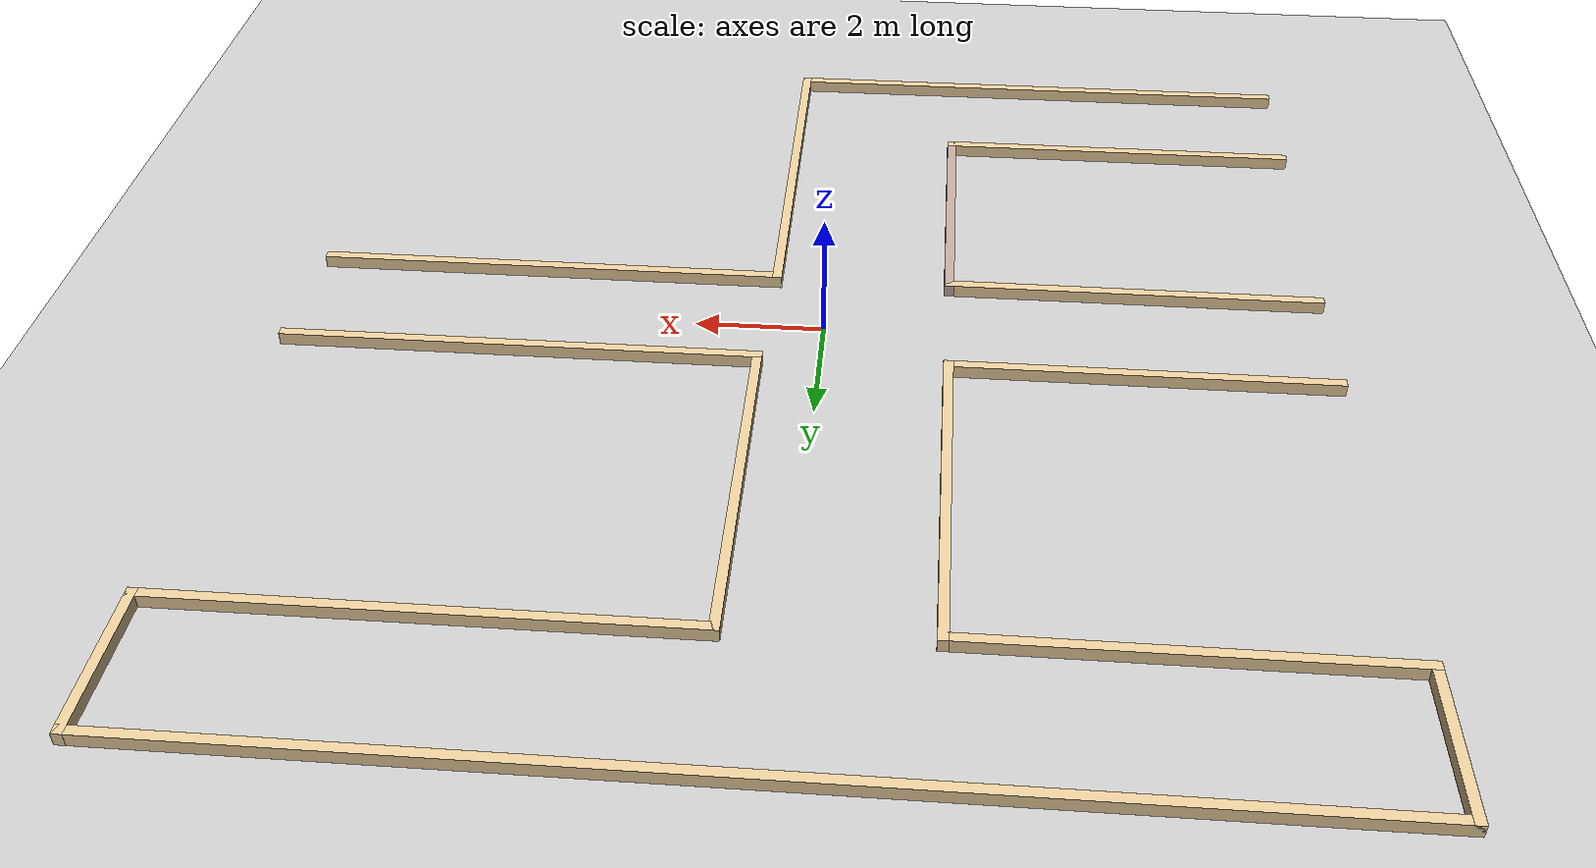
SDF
<sdf version="1.6">
 <world name="default">
  <light name="sun" type="directional">
   <pose>0 0 10 0 -0 0</pose>
   <diffuse>0.8 0.8 0.8 1</diffuse>
   <specular>0.2 0.2 0.2 1</specular>
   <attenuation>
    <range>1000</range>
    <constant>0.9</constant>
    <linear>0.01</linear>
    <quadratic>0.001</quadratic>
   </attenuation>
   <direction>-0.5 0.1 -0.9</direction>
  </light>
  <plugin name="collision_map_creator" filename="libcollision_map_creator.so"/>
  <model name="ground_plane">
   <static>1</static>
   <link name="link">
    <collision name="collision">
     <geometry><plane><normal>0 0 1</normal><size>100 100</size></plane></geometry>
     <surface><friction><ode><mu>100</mu><mu2>50</mu2></ode></friction></surface>
    </collision>
    <visual name="visual">
     <cast_shadows>0</cast_shadows>
     <geometry><plane><normal>0 0 1</normal><size>100 100</size></plane></geometry>
     <material>
      <script><uri>file://media/materials/scripts/gazebo.material</uri><name>Gazebo/Grey</name></script>
     </material>
    </visual>
   </link>
  </model>
  <gravity>0 0 -9.8</gravity>
  <magnetic_field>6e-06 2.3e-05 -4.2e-05</magnetic_field>
  <atmosphere type="adiabatic"/>
  <physics name="default_physics" default="0" type="ode">
   <max_step_size>0.001</max_step_size>
   <real_time_factor>1</real_time_factor>
   <real_time_update_rate>1000</real_time_update_rate>
  </physics>
  <scene><ambient>0.4 0.4 0.4 1</ambient><background>0.7 0.7 0.7 1</background><shadows>1</shadows></scene>
  <spherical_coordinates>
   <surface_model>EARTH_WGS84</surface_model>
   <latitude_deg>0</latitude_deg>
   <longitude_deg>0</longitude_deg>
   <elevation>0</elevation>
   <heading_deg>0</heading_deg>
  </spherical_coordinates>
  <model name="intersections2">
   <pose>0.244 0.6254 0 0 -0 0</pose>
   <link name="Wall_10">
    <collision name="Wall_10_Collision">
     <geometry><box><size>6 0.15 0.2</size></box></geometry>
     <pose>0 0 0.1 0 -0 0</pose>
    </collision>
    <visual name="Wall_10_Visual">
     <pose>0 0 0.1 0 -0 0</pose>
     <geometry><box><size>6 0.15 0.2</size></box></geometry>
     <material>
      <script><uri>file://media/materials/scripts/gazebo.material</uri><name>Gazebo/Grey</name></script>
      <ambient>0.921569 0.807843 0.615686 1</ambient>
     </material>
    </visual>
    <pose>-5.114 -1.7644 0 0 -0 3.14159</pose>
   </link>
   <link name="Wall_13">
    <collision name="Wall_13_Collision">
     <geometry><box><size>8.75 0.15 0.2</size></box></geometry>
     <pose>0 0 0.1 0 -0 0</pose>
    </collision>
    <visual name="Wall_13_Visual">
     <pose>0 0 0.1 0 -0 0</pose>
     <geometry><box><size>8.75 0.15 0.2</size></box></geometry>
     <material>
      <script><uri>file://media/materials/scripts/gazebo.material</uri><name>Gazebo/Grey</name></script>
      <ambient>0.921569 0.807843 0.615686 1</ambient>
     </material>
    </visual>
    <pose>-3.719 -8.2669 0 0 -0 0.002674</pose>
   </link>
   <link name="Wall_14">
    <collision name="Wall_14_Collision">
     <geometry><box><size>6.62009 0.15 0.2</size></box></geometry>
     <pose>0 0 0.1 0 -0 0</pose>
    </collision>
    <visual name="Wall_14_Visual">
     <pose>0 0 0.1 0 -0 0</pose>
     <geometry><box><size>6.62009 0.15 0.2</size></box></geometry>
     <material>
      <script><uri>file://media/materials/scripts/gazebo.material</uri><name>Gazebo/Grey</name></script>
      <ambient>0.921569 0.807843 0.615686 1</ambient>
     </material>
    </visual>
    <pose>0.581 -5.0199 0 0 -0 1.5708</pose>
   </link>
   <link name="Wall_15">
    <collision name="Wall_15_Collision">
     <geometry><box><size>7.5 0.15 0.2</size></box></geometry>
     <pose>0 0 0.1 0 -0 0</pose>
    </collision>
    <visual name="Wall_15_Visual">
     <pose>0 0 0.1 0 -0 0</pose>
     <geometry><box><size>7.5 0.15 0.2</size></box></geometry>
     <material>
      <script><uri>file://media/materials/scripts/gazebo.material</uri><name>Gazebo/Grey</name></script>
      <ambient>0.921569 0.807843 0.615686 1</ambient>
     </material>
    </visual>
    <pose>4.256 -1.7844 0 0 -0 0</pose>
   </link>
   <link name="Wall_17">
    <collision name="Wall_17_Collision">
     <geometry><box><size>6 0.15 0.2</size></box></geometry>
     <pose>0 0 0.1 0 -0 0</pose>
    </collision>
    <visual name="Wall_17_Visual">
     <pose>0 0 0.1 0 -0 0</pose>
     <geometry><box><size>6 0.15 0.2</size></box></geometry>
     <material>
      <script><uri>file://media/materials/scripts/gazebo.material</uri><name>Gazebo/Grey</name></script>
      <ambient>0.921569 0.807843 0.615686 1</ambient>
     </material>
    </visual>
    <pose>-5.125 0.328597 0 0 -0 0</pose>
   </link>
   <link name="Wall_18">
    <collision name="Wall_18_Collision">
     <geometry><box><size>5.75 0.15 0.2</size></box></geometry>
     <pose>0 0 0.1 0 -0 0</pose>
    </collision>
    <visual name="Wall_18_Visual">
     <pose>0 0 0.1 0 -0 0</pose>
     <geometry><box><size>5.75 0.15 0.2</size></box></geometry>
     <material>
      <script><uri>file://media/materials/scripts/gazebo.material</uri><name>Gazebo/Grey</name></script>
      <ambient>0.921569 0.807843 0.615686 1</ambient>
     </material>
    </visual>
    <pose>-2.2 3.1286 0 0 -0 1.5708</pose>
   </link>
   <link name="Wall_19">
    <collision name="Wall_19_Collision">
     <geometry><box><size>6.25 0.15 0.2</size></box></geometry>
     <pose>0 0 0.1 0 -0 0</pose>
    </collision>
    <visual name="Wall_19_Visual">
     <pose>0 0 0.1 0 -0 0</pose>
     <geometry><box><size>6.25 0.15 0.2</size></box></geometry>
     <material>
      <script><uri>file://media/materials/scripts/gazebo.material</uri><name>Gazebo/Grey</name></script>
      <ambient>0.921569 0.807843 0.615686 1</ambient>
     </material>
    </visual>
    <pose>-5.25 5.9286 0 0 -0 3.14159</pose>
   </link>
   <link name="Wall_20">
    <collision name="Wall_20_Collision">
     <geometry><box><size>2.5 0.15 0.2</size></box></geometry>
     <pose>0 0 0.1 0 -0 0</pose>
    </collision>
    <visual name="Wall_20_Visual">
     <pose>0 0 0.1 0 -0 0</pose>
     <geometry><box><size>2.5 0.15 0.2</size></box></geometry>
     <material>
      <script><uri>file://media/materials/scripts/gazebo.material</uri><name>Gazebo/Grey</name></script>
      <ambient>0.921569 0.807843 0.615686 1</ambient>
     </material>
    </visual>
    <pose>-8.3 7.1036 0 0 -0 1.5708</pose>
   </link>
   <link name="Wall_21">
    <collision name="Wall_21_Collision">
     <geometry><box><size>16.75 0.15 0.2</size></box></geometry>
     <pose>0 0 0.1 0 -0 0</pose>
    </collision>
    <visual name="Wall_21_Visual">
     <pose>0 0 0.1 0 -0 0</pose>
     <geometry><box><size>16.75 0.15 0.2</size></box></geometry>
     <material>
      <script><uri>file://media/materials/scripts/gazebo.material</uri><name>Gazebo/Grey</name></script>
      <ambient>0.921569 0.807843 0.615686 1</ambient>
     </material>
    </visual>
    <pose>0 8.2786 0 0 -0 0</pose>
   </link>
   <link name="Wall_22">
    <collision name="Wall_22_Collision">
     <geometry><box><size>2.44501 0.15 0.2</size></box></geometry>
     <pose>0 0 0.1 0 -0 0</pose>
    </collision>
    <visual name="Wall_22_Visual">
     <pose>0 0 0.1 0 -0 0</pose>
     <geometry><box><size>2.44501 0.15 0.2</size></box></geometry>
     <material>
      <script><uri>file://media/materials/scripts/gazebo.material</uri><name>Gazebo/Grey</name></script>
      <ambient>0.921569 0.807843 0.615686 1</ambient>
     </material>
    </visual>
    <pose>8.3 7.1311 0 0 0 -1.5708</pose>
   </link>
   <link name="Wall_23">
    <collision name="Wall_23_Collision">
     <geometry><box><size>7.75 0.15 0.2</size></box></geometry>
     <pose>0 0 0.1 0 -0 0</pose>
    </collision>
    <visual name="Wall_23_Visual">
     <pose>0 0 0.1 0 -0 0</pose>
     <geometry><box><size>7.75 0.15 0.2</size></box></geometry>
     <material>
      <script><uri>file://media/materials/scripts/gazebo.material</uri><name>Gazebo/Grey</name></script>
      <ambient>0.921569 0.807843 0.615686 1</ambient>
     </material>
    </visual>
    <pose>4.5 5.9836 0 0 -0 3.14159</pose>
   </link>
   <link name="Wall_24">
    <collision name="Wall_24_Collision">
     <geometry><box><size>5.80499 0.15 0.2</size></box></geometry>
     <pose>0 0 0.1 0 -0 0</pose>
    </collision>
    <visual name="Wall_24_Visual">
     <pose>0 0 0.1 0 -0 0</pose>
     <geometry><box><size>5.80499 0.15 0.2</size></box></geometry>
     <material>
      <script><uri>file://media/materials/scripts/gazebo.material</uri><name>Gazebo/Grey</name></script>
      <ambient>0.921569 0.807843 0.615686 1</ambient>
     </material>
    </visual>
    <pose>0.7 3.1561 0 0 0 -1.5708</pose>
   </link>
   <link name="Wall_25">
    <collision name="Wall_25_Collision">
     <geometry><box><size>7.5 0.15 0.2</size></box></geometry>
     <pose>0 0 0.1 0 -0 0</pose>
    </collision>
    <visual name="Wall_25_Visual">
     <pose>0 0 0.1 0 -0 0</pose>
     <geometry><box><size>7.5 0.15 0.2</size></box></geometry>
     <material>
      <script><uri>file://media/materials/scripts/gazebo.material</uri><name>Gazebo/Grey</name></script>
      <ambient>0.921569 0.807843 0.615686 1</ambient>
     </material>
    </visual>
    <pose>4.375 0.328597 0 0 -0 0</pose>
   </link>
   <link name="Wall_8">
    <collision name="Wall_8_Collision">
     <geometry><box><size>6 0.15 0.2</size></box></geometry>
     <pose>0 0 0.1 0 -0 0</pose>
    </collision>
    <visual name="Wall_8_Visual">
     <pose>0 0 0.1 0 -0 0</pose>
     <geometry><box><size>6 0.15 0.2</size></box></geometry>
     <material>
      <script><uri>file://media/materials/scripts/gazebo.material</uri><name>Gazebo/Grey</name></script>
      <ambient>0.921569 0.807843 0.615686 1</ambient>
     </material>
    </visual>
    <pose>-5.114 -6.1144 0 0 -0 0</pose>
   </link>
   <link name="Wall_9">
    <collision name="Wall_9_Collision">
     <geometry><box><size>4.5 0.15 0.2</size></box></geometry>
     <pose>0 0 0.1 0 -0 0</pose>
    </collision>
    <visual name="Wall_9_Visual">
     <pose>0 0 0.1 0 -0 0</pose>
     <geometry><box><size>4.5 0.15 0.2</size></box></geometry>
     <material>
      <script><uri>file://media/materials/scripts/gazebo.material</uri><name>Gazebo/Grey</name></script>
      <ambient>0.760784 0.662745 0.627451 1</ambient>
     </material>
    </visual>
    <pose>-2.189 -3.9394 0 0 -0 1.5708</pose>
   </link>
   <static>1</static>
  </model>
  <audio><device>default</device></audio>
 </world>
</sdf>
